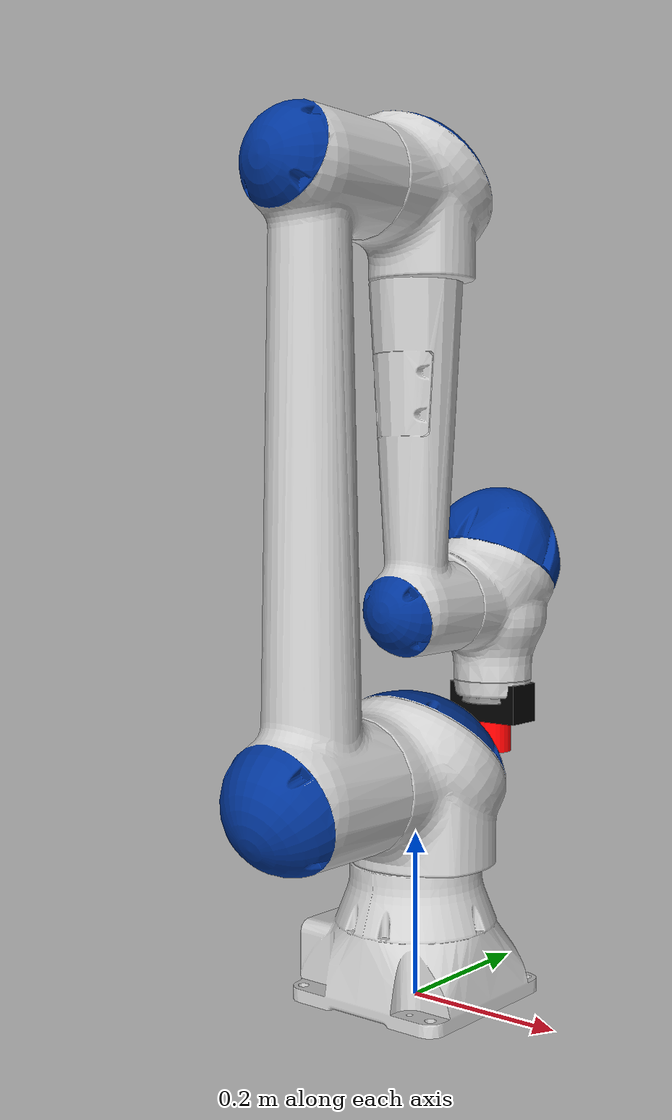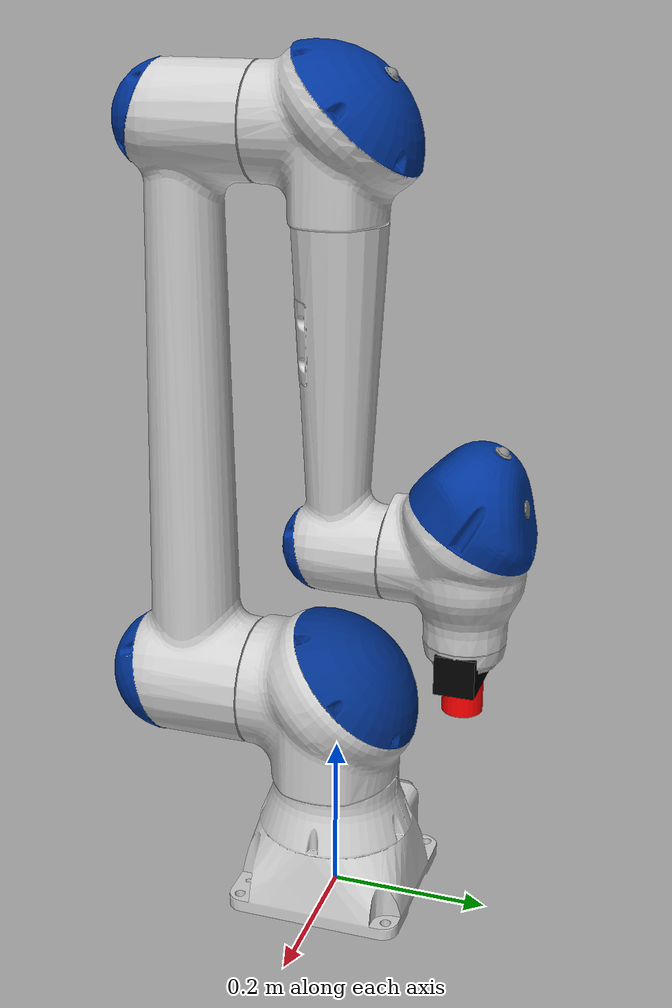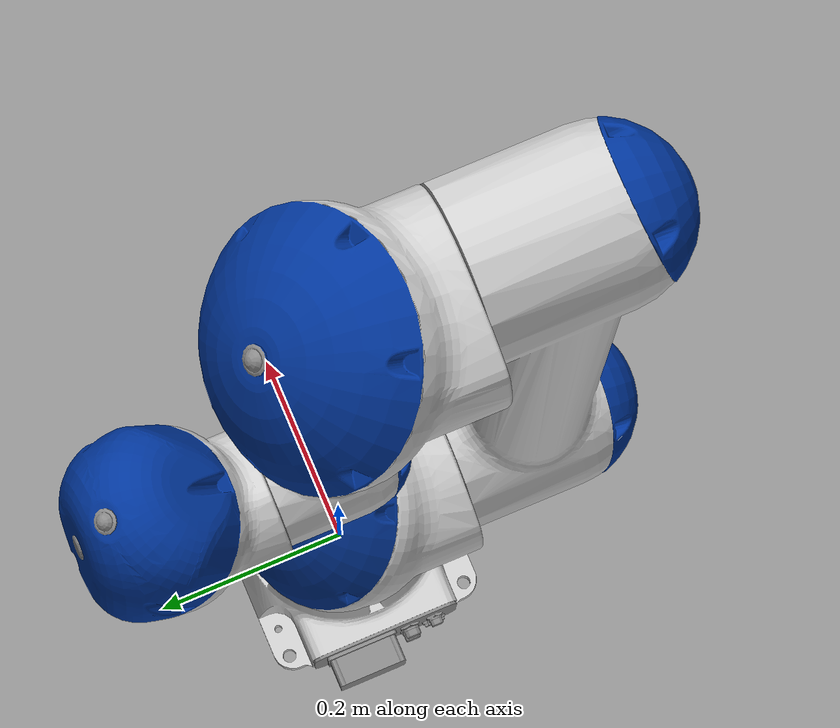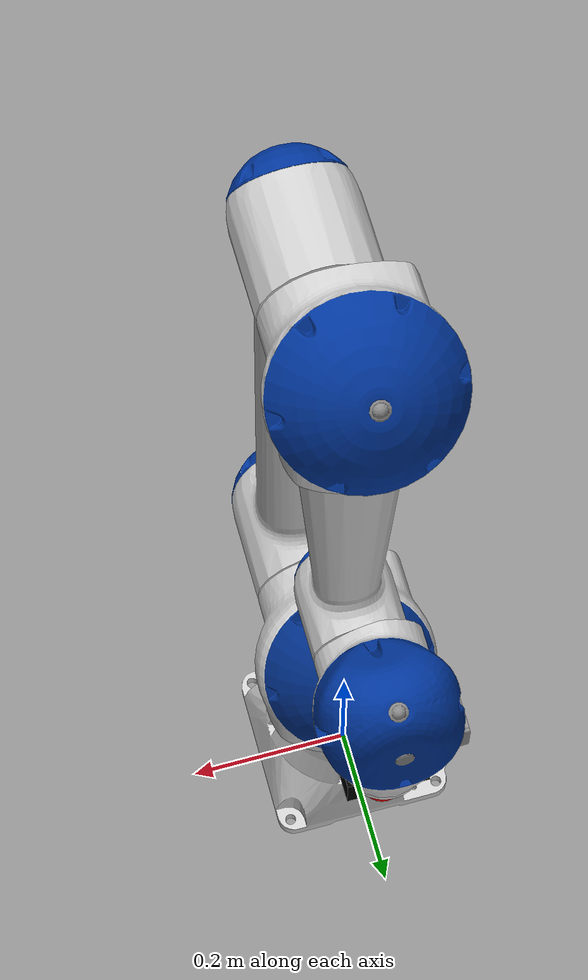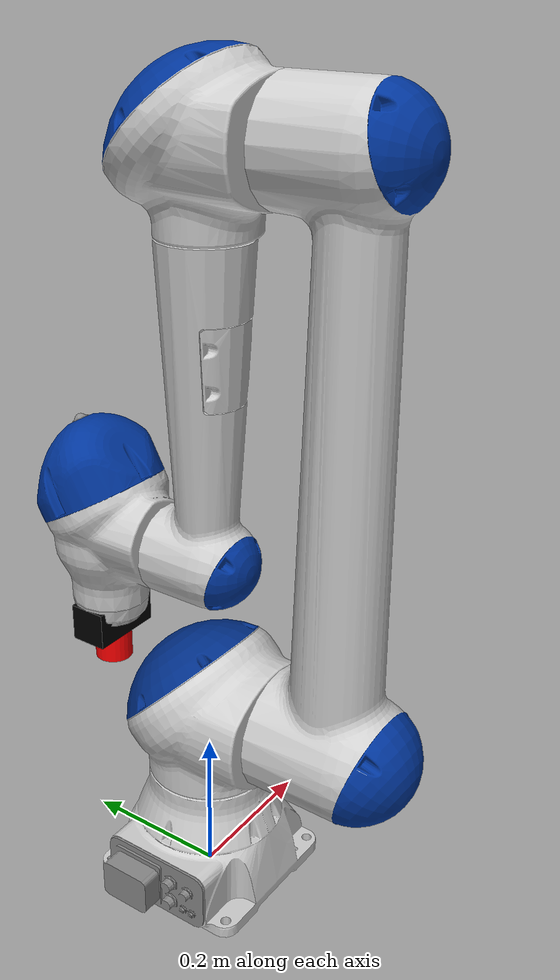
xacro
<?xml version="1.0"?>
<robot name="motoman_hc10" xmlns:xacro="http://ros.org/wiki/xacro">
  <xacro:include filename="$(find motoman_hc10_support)/urdf/hc10_macro.xacro" />
  <xacro:include filename="$(find motoman_hc10_support)/urdf/hc10_control.xacro" />
  <xacro:include filename="$(find motoman_hc10_support)/urdf/hc10_sensor.xacro" />
  <xacro:motoman_hc10 prefix="" />
  <xacro:hc10_sensor prefix="" />
  <xacro:hc10_control prefix="" />
</robot>

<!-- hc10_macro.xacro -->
<robot xmlns:xacro="http://ros.org/wiki/xacro">
  <xacro:macro name="motoman_hc10" params="prefix">
    <xacro:include filename="$(find motoman_resources)/urdf/common_materials.xacro" />
    <!-- link list -->
    <link name="world" />
    <link
      name="${prefix}base_link">
      <visual>
        <geometry>
          <mesh filename="package://motoman_hc10_support/meshes/hc10/visual/base_link.dae" />
        </geometry>
        <xacro:material_yaskawa_blue />
      </visual>
      <collision>
        <geometry>
          <mesh filename="package://motoman_hc10_support/meshes/hc10/collision/base_link.stl" />
        </geometry>
      </collision>
      <inertial>
        <origin xyz="0 0 0" rpy="0 0 0" />
        <mass value="0.1" />
        <inertia ixx="0.03" ixy="0.03" ixz="0.03" iyy="0.0" iyz="0.0" izz="0.0" />
      </inertial>
    </link>
    <link
      name="${prefix}link_1_s">
      <visual>
        <geometry>
          <mesh filename="package://motoman_hc10_support/meshes/hc10/visual/link_1_s.dae" />
        </geometry>
        <xacro:material_yaskawa_blue />
      </visual>
      <collision>
        <geometry>
          <mesh filename="package://motoman_hc10_support/meshes/hc10/collision/link_1_s.stl" />
        </geometry>
      </collision>
      <inertial>
        <origin xyz="0 0 0" rpy="0 0 0" />
        <mass value="0.1" />
        <inertia ixx="0.03" ixy="0.03" ixz="0.03" iyy="0.0" iyz="0.0" izz="0.0" />
      </inertial>
    </link>
    <link
      name="${prefix}link_2_l">
      <visual>
        <geometry>
          <mesh filename="package://motoman_hc10_support/meshes/hc10/visual/link_2_l.dae" />
        </geometry>
        <xacro:material_yaskawa_blue />
      </visual>
      <collision>
        <geometry>
          <mesh filename="package://motoman_hc10_support/meshes/hc10/collision/link_2_l.stl" />
        </geometry>
      </collision>
      <inertial>
        <origin xyz="0 0 0" rpy="0 0 0" />
        <mass value="0.1" />
        <inertia ixx="0.03" ixy="0.03" ixz="0.03" iyy="0.0" iyz="0.0" izz="0.0" />
      </inertial>
    </link>
    <link
      name="${prefix}link_3_u">
      <visual>
        <geometry>
          <mesh filename="package://motoman_hc10_support/meshes/hc10/visual/link_3_u.dae" />
        </geometry>
        <xacro:material_yaskawa_blue />
      </visual>
      <collision>
        <geometry>
          <mesh filename="package://motoman_hc10_support/meshes/hc10/collision/link_3_u.stl" />
        </geometry>
      </collision>
      <inertial>
        <origin xyz="0 0 0" rpy="0 0 0" />
        <mass value="0.1" />
        <inertia ixx="0.03" ixy="0.03" ixz="0.03" iyy="0.0" iyz="0.0" izz="0.0" />
      </inertial>
    </link>
    <link
      name="${prefix}link_4_r">
      <visual>
        <geometry>
          <mesh filename="package://motoman_hc10_support/meshes/hc10/visual/link_4_r.dae" />
        </geometry>
        <xacro:material_yaskawa_blue />
      </visual>
      <collision>
        <geometry>
          <mesh filename="package://motoman_hc10_support/meshes/hc10/collision/link_4_r.stl" />
        </geometry>
      </collision>
      <inertial>
        <origin xyz="0 0 0" rpy="0 0 0" />
        <mass value="0.1" />
        <inertia ixx="0.03" ixy="0.03" ixz="0.03" iyy="0.0" iyz="0.0" izz="0.0" />
      </inertial>
    </link>
    <link
      name="${prefix}link_5_b">
      <visual>
        <geometry>
          <mesh filename="package://motoman_hc10_support/meshes/hc10/visual/link_5_b.dae" />
        </geometry>
        <xacro:material_yaskawa_blue />
      </visual>
      <collision>
        <geometry>
          <mesh filename="package://motoman_hc10_support/meshes/hc10/collision/link_5_b.stl" />
        </geometry>
      </collision>
      <inertial>
        <origin xyz="0 0 0" rpy="0 0 0" />
        <mass value="0.1" />
        <inertia ixx="0.03" ixy="0.03" ixz="0.03" iyy="0.0" iyz="0.0" izz="0.0" />
      </inertial>
    </link>
    <link
      name="${prefix}link_6_t">
      <visual>
        <geometry>
          <mesh filename="package://motoman_hc10_support/meshes/hc10/visual/link_6_t.dae" />
        </geometry>
        <xacro:material_yaskawa_blue />
      </visual>
      <collision>
        <geometry>
          <mesh filename="package://motoman_hc10_support/meshes/hc10/collision/link_6_t.stl" />
        </geometry>
      </collision>
      <inertial>
        <origin xyz="0 0 0" rpy="0 0 0" />
        <mass value="0.1" />
        <inertia ixx="0.03" ixy="0.03" ixz="0.03" iyy="0.0" iyz="0.0" izz="0.0" />
      </inertial>
    </link>
    <link
      name="${prefix}tool0" />
    <!-- end of link list -->

    <!-- joint list -->
    <joint name="world_fixed" type="fixed">
      <parent link="world" />
      <child link="${prefix}base_link" />
      <dynamics damping="1" />
    </joint>
    <joint name="${prefix}joint_1_s" type="revolute">
      <parent link="${prefix}base_link" />
      <child link="${prefix}link_1_s" />
      <origin xyz="0 0 0.275" rpy="0 0 0" />
      <axis xyz="0 0 1" />
      <limit lower="${radians(-180)}" upper="${radians(180)}" effort="368.48"
        velocity="${radians(130)}" />
      <dynamics damping="1" />
    </joint>
    <joint name="${prefix}joint_2_l" type="revolute">
      <parent link="${prefix}link_1_s" />
      <child link="${prefix}link_2_l" />
      <origin xyz="0 0 0" rpy="0 0 0" />
      <axis xyz="0 1 0" />
      <limit lower="${radians(-180)}" upper="${radians(180)}" effort="368.48"
        velocity="${radians(130)}" />
      <dynamics damping="1" />
    </joint>
    <joint name="${prefix}joint_3_u" type="revolute">
      <parent link="${prefix}link_2_l" />
      <child link="${prefix}link_3_u" />
      <origin xyz="0 0 0.700" rpy="0 0 0" />
      <axis xyz="0 -1 0" />
      <limit lower="${radians(-5)}" upper="${radians(355)}" effort="141.12"
        velocity="${radians(180)}" />
      <dynamics damping="1" />
    </joint>
    <joint name="${prefix}joint_4_r" type="revolute">
      <parent link="${prefix}link_3_u" />
      <child link="${prefix}link_4_r" />
      <origin xyz="0 0 -0.500" rpy="0 0 0" />
      <axis xyz="0 0 1" />
      <limit lower="${radians(-180)}" upper="${radians(180)}" effort="39.20"
        velocity="${radians(180)}" />
      <dynamics damping="1" />
    </joint>
    <joint name="${prefix}joint_5_b" type="revolute">
      <parent link="${prefix}link_4_r" />
      <child link="${prefix}link_5_b" />
      <origin xyz="0 0.162 0" rpy="0 0 0" />
      <axis xyz="0 -1 0" />
      <limit lower="${radians(-180)}" upper="${radians(180)}" effort="31.36"
        velocity="${radians(250)}" />
      <dynamics damping="1" />
    </joint>
    <joint name="${prefix}joint_6_t" type="revolute">
      <parent link="${prefix}link_5_b" />
      <child link="${prefix}link_6_t" />
      <origin xyz="0 0 0" rpy="0 0 0" />
      <axis xyz="0 0 1" />
      <limit lower="${radians(-180)}" upper="${radians(180)}" effort="31.36"
        velocity="${radians(250)}" />
      <dynamics damping="1" />
    </joint>
    <joint name="${prefix}joint_6_t-tool0" type="fixed">
      <origin xyz="0 0 -0.130" rpy="${pi} 0 0" />
      <parent link="${prefix}link_6_t" />
      <child link="${prefix}tool0" />
      <dynamics damping="1" />
    </joint>
    <!-- end of joint list -->

    <!-- ROS base_link to Robot Manufacturer World Coordinates transform -->
    <link name="${prefix}base" />
    <joint
      name="${prefix}base_link-base" type="fixed">
      <origin xyz="0 0 0.275" rpy="0 0 0" />
      <parent link="${prefix}base_link" />
      <child link="${prefix}base" />
    </joint>
  </xacro:macro>
</robot>

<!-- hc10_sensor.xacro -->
<robot xmlns:xacro="http://ros.org/wiki/xacro">
    <xacro:macro name="hc10_sensor" params="prefix">
        <xacro:include filename="$(find motoman_resources)/urdf/common_materials.xacro" />
        <link name="sensor_link">
            <!-- Visual properties: This is how the link appears in simulation -->
            <visual>
                <origin xyz="0 0 0" rpy="0 0 0" />
                <geometry>
                    <!-- Replace 'box' with the desired shape (box, cylinder, sphere, mesh) -->
                    <box size="0.05 0.05 0.1" />
                </geometry>
                <material name="green">
                    <color rgba="0 0 0 1" />
                </material>
            </visual>
            <visual>
                <origin xyz="0.04 0 0" rpy="0 -1.570796 0" />
                <geometry>
                    <!-- Replace 'box' with the desired shape (box, cylinder, sphere, mesh) -->
                    <cylinder radius="0.025" length="0.05" />
                </geometry>

                <material name="red">
                    <color rgba="1 0 0 1" />
                </material>
            </visual>

        </link>
        <link name="point_cloud_frame">
        </link>
        <gazebo reference="sensor_link">
            <sensor name="kinect_camera" type="depth">
                <update_rate>10</update_rate>
                <camera>
                    <horizontal_fov>1.67198</horizontal_fov>
                    <image>
                        <width>640</width>
                        <height>480</height>
                        <format>B8G8R8</format>
                    </image>
                    <clip>
                        <near>0.05</near>
                        <far>1</far>
                    </clip>
                </camera>
                <plugin name="kinect_controller" filename="libgazebo_ros_openni_kinect.so">
                    <baseline>0.1</baseline>
                    <alwaysOn>true</alwaysOn>
                    <updateRate>10</updateRate>
                    <cameraName>camera_ir</cameraName>
                    <imageTopicName>/camera/color/image_raw</imageTopicName>
                    <cameraInfoTopicName>/camera/color/camera_info</cameraInfoTopicName>
                    <depthImageTopicName>/camera/depth/image_raw</depthImageTopicName>
                    <depthImageCameraInfoTopicName>/camera/depth/camera_info</depthImageCameraInfoTopicName>
                    <pointCloudTopicName>/camera/depth/points</pointCloudTopicName>
                    <frameName>point_cloud_frame</frameName>
                    <distortion_k1>0.0</distortion_k1>
                    <distortion_k2>0.0</distortion_k2>
                    <distortion_k3>0.0</distortion_k3>
                    <distortion_t1>0.0</distortion_t1>
                    <distortion_t2>0.0</distortion_t2>
                    <pointCloudCutoff>0.16</pointCloudCutoff>
                    <pointCloudCutoffMax>10.0</pointCloudCutoffMax>
                </plugin>
                <visualize>true</visualize>
            </sensor>
        </gazebo>
        <joint type="fixed" name="cloud_joint">
            <origin xyz="0 0 0" rpy="0 0 -1.570796" />
            <child link="point_cloud_frame" />
            <parent link="tool0" />
            <axis xyz="0 0 0" rpy="0 0 0" />
            <limit effort="10000" velocity="1000" />
            <dynamics damping="1.0" friction="1.0" />
        </joint>

        <joint type="fixed" name="camera_joint">
            <origin xyz="0 0 0" rpy="0 -1.570796 0" />
            <child link="sensor_link" />
            <parent link="tool0" />
            <axis xyz="0 0 0" rpy="0 0 0" />
            <limit effort="10000" velocity="1000" />
            <dynamics damping="1.0" friction="1.0" />
        </joint>
    </xacro:macro>
</robot>
